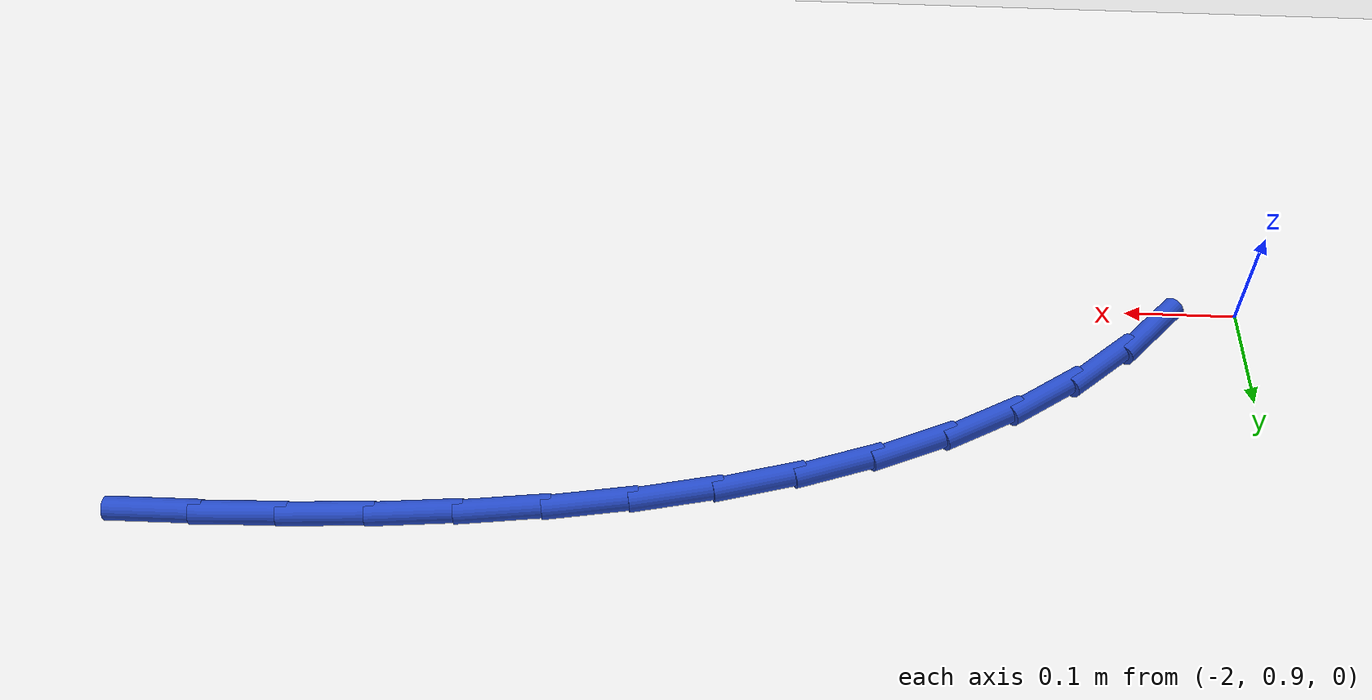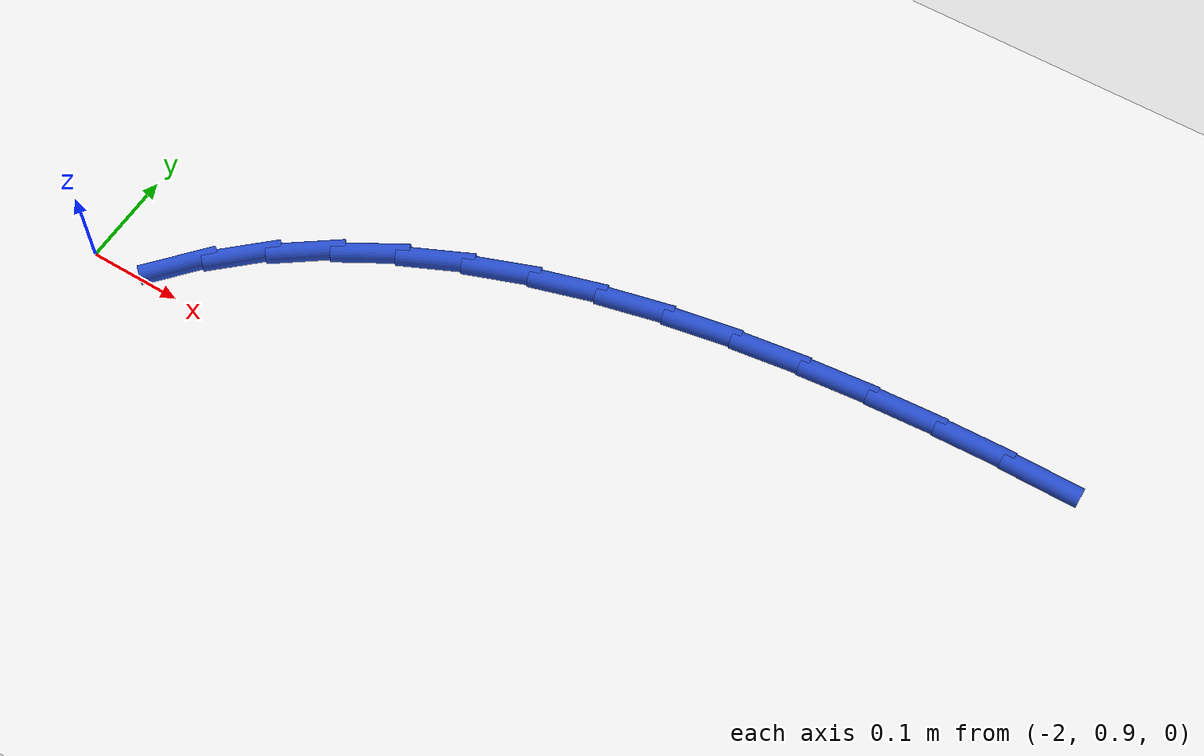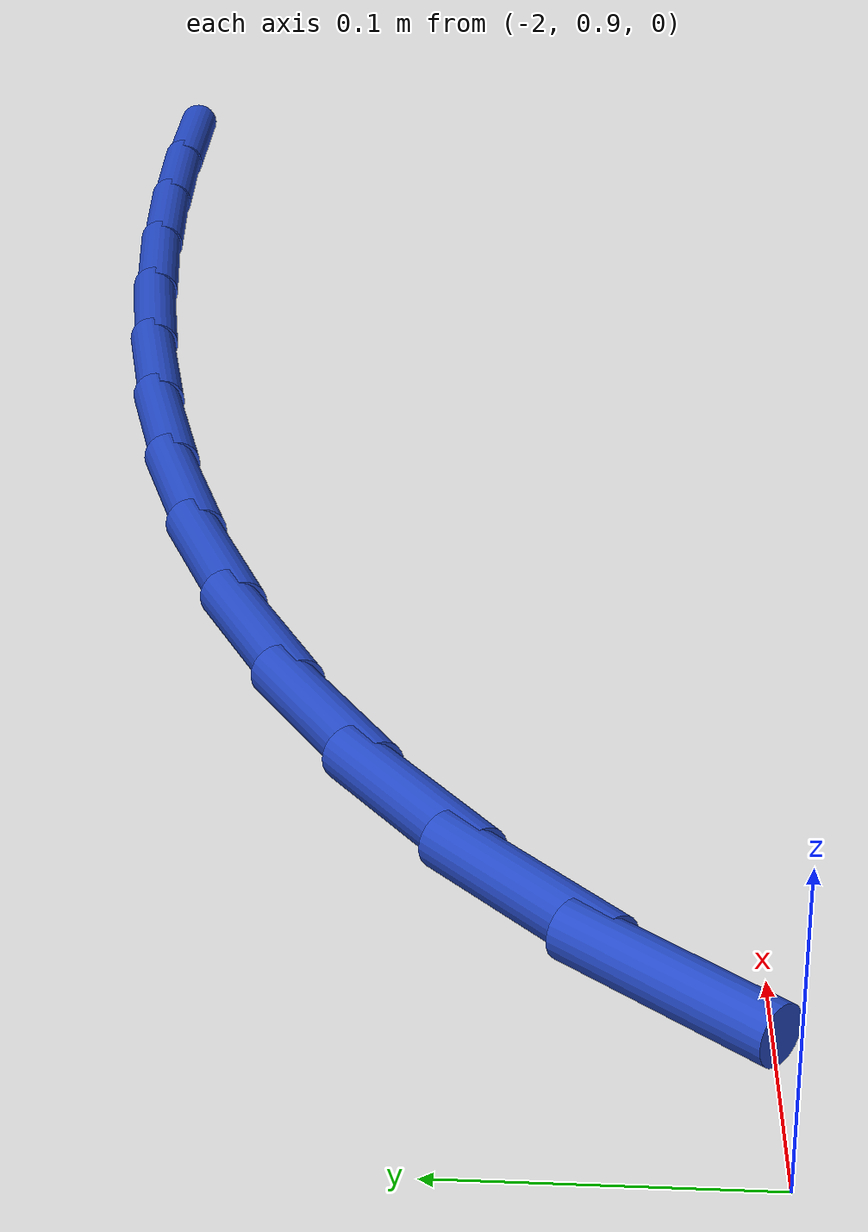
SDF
<sdf version="1.6">
 <world name="default">
  <model name="ground_plane">
   <static>1</static>
   <link name="link">
    <collision name="collision">
     <geometry><plane><normal>0 0 1</normal><size>100 100</size></plane></geometry>
     <surface><friction><ode><mu>100</mu><mu2>50</mu2></ode></friction></surface>
    </collision>
    <visual name="visual">
     <cast_shadows>0</cast_shadows>
     <geometry><plane><normal>0 0 1</normal><size>100 100</size></plane></geometry>
     <material>
      <script><uri>file://media/materials/scripts/gazebo.material</uri><name>Gazebo/WhiteGlow</name></script>
     </material>
    </visual>
   </link>
  </model>
  <model name="line">
   <link name="link_26">
    <pose>-1.0818054697793482 1.1676731496560506 0.01 0 1.57 0.009315763079756604</pose>
    <collision name="collision">
     <geometry><cylinder><radius>0.01</radius><length>0.08</length></cylinder></geometry>
    </collision>
    <visual name="visual">
     <material>
      <script><name>Gazebo/Blue</name><uri>file://media/materials/scripts/gazebo.material</uri></script>
     </material>
     <geometry><cylinder><radius>0.01</radius><length>0.08</length></cylinder></geometry>
    </visual>
   </link>
   <link name="link_27">
    <pose>-1.1517656130102303 1.167021398682846 0.01 0 1.57 0.04032283907594317</pose>
    <collision name="collision">
     <geometry><cylinder><radius>0.01</radius><length>0.08</length></cylinder></geometry>
    </collision>
    <visual name="visual">
     <material>
      <script><name>Gazebo/Blue</name><uri>file://media/materials/scripts/gazebo.material</uri></script>
     </material>
     <geometry><cylinder><radius>0.01</radius><length>0.08</length></cylinder></geometry>
    </visual>
   </link>
   <link name="link_28">
    <pose>-1.222502169804844 1.1641675529996913 0.01 0 1.57 0.06831232502614222</pose>
    <collision name="collision">
     <geometry><cylinder><radius>0.01</radius><length>0.08</length></cylinder></geometry>
    </collision>
    <visual name="visual">
     <material>
      <script><name>Gazebo/Blue</name><uri>file://media/materials/scripts/gazebo.material</uri></script>
     </material>
     <geometry><cylinder><radius>0.01</radius><length>0.08</length></cylinder></geometry>
    </visual>
   </link>
   <link name="link_29">
    <pose>-1.2936864774518142 1.159297209141389 0.01 0 1.57 0.10052441942195812</pose>
    <collision name="collision">
     <geometry><cylinder><radius>0.01</radius><length>0.08</length></cylinder></geometry>
    </collision>
    <visual name="visual">
     <material>
      <script><name>Gazebo/Blue</name><uri>file://media/materials/scripts/gazebo.material</uri></script>
     </material>
     <geometry><cylinder><radius>0.01</radius><length>0.08</length></cylinder></geometry>
    </visual>
   </link>
   <link name="link_30">
    <pose>-1.364812652204743 1.1521231102871643 0.01 0 1.57 0.13815422762933793</pose>
    <collision name="collision">
     <geometry><cylinder><radius>0.01</radius><length>0.08</length></cylinder></geometry>
    </collision>
    <visual name="visual">
     <material>
      <script><name>Gazebo/Blue</name><uri>file://media/materials/scripts/gazebo.material</uri></script>
     </material>
     <geometry><cylinder><radius>0.01</radius><length>0.08</length></cylinder></geometry>
    </visual>
   </link>
   <link name="link_31">
    <pose>-1.4353584777887505 1.1423144218835135 0.01 0 1.57 0.18191666838430395</pose>
    <collision name="collision">
     <geometry><cylinder><radius>0.01</radius><length>0.08</length></cylinder></geometry>
    </collision>
    <visual name="visual">
     <material>
      <script><name>Gazebo/Blue</name><uri>file://media/materials/scripts/gazebo.material</uri></script>
     </material>
     <geometry><cylinder><radius>0.01</radius><length>0.08</length></cylinder></geometry>
    </visual>
   </link>
   <link name="link_32">
    <pose>-1.5048017379289547 1.1295403093769327 0.01 0 1.57 0.23267003082374485</pose>
    <collision name="collision">
     <geometry><cylinder><radius>0.01</radius><length>0.08</length></cylinder></geometry>
    </collision>
    <visual name="visual">
     <material>
      <script><name>Gazebo/Blue</name><uri>file://media/materials/scripts/gazebo.material</uri></script>
     </material>
     <geometry><cylinder><radius>0.01</radius><length>0.08</length></cylinder></geometry>
    </visual>
   </link>
   <link name="link_33">
    <pose>-1.5726202163504759 1.1134699382139184 0.01 0 1.57 0.29140119633012423</pose>
    <collision name="collision">
     <geometry><cylinder><radius>0.01</radius><length>0.08</length></cylinder></geometry>
    </collision>
    <visual name="visual">
     <material>
      <script><name>Gazebo/Blue</name><uri>file://media/materials/scripts/gazebo.material</uri></script>
     </material>
     <geometry><cylinder><radius>0.01</radius><length>0.08</length></cylinder></geometry>
    </visual>
   </link>
   <link name="link_34">
    <pose>-1.6382916967784333 1.0937724738409669 0.01 0 1.57 0.35918170514050424</pose>
    <collision name="collision">
     <geometry><cylinder><radius>0.01</radius><length>0.08</length></cylinder></geometry>
    </collision>
    <visual name="visual">
     <material>
      <script><name>Gazebo/Blue</name><uri>file://media/materials/scripts/gazebo.material</uri></script>
     </material>
     <geometry><cylinder><radius>0.01</radius><length>0.08</length></cylinder></geometry>
    </visual>
   </link>
   <link name="link_35">
    <pose>-1.7012939629379455 1.0701170817045735 0.01 0 1.57 0.43707232827121406</pose>
    <collision name="collision">
     <geometry><cylinder><radius>0.01</radius><length>0.08</length></cylinder></geometry>
    </collision>
    <visual name="visual">
     <material>
      <script><name>Gazebo/Blue</name><uri>file://media/materials/scripts/gazebo.material</uri></script>
     </material>
     <geometry><cylinder><radius>0.01</radius><length>0.08</length></cylinder></geometry>
    </visual>
   </link>
   <link name="link_36">
    <pose>-1.7611047985541326 1.0421729272512357 0.01 0 1.57 0.5259489615827543</pose>
    <collision name="collision">
     <geometry><cylinder><radius>0.01</radius><length>0.08</length></cylinder></geometry>
    </collision>
    <visual name="visual">
     <material>
      <script><name>Gazebo/Blue</name><uri>file://media/materials/scripts/gazebo.material</uri></script>
     </material>
     <geometry><cylinder><radius>0.01</radius><length>0.08</length></cylinder></geometry>
    </visual>
   </link>
   <link name="link_37">
    <pose>-1.8172019873521128 1.0096091759274486 0.01 0 1.57 0.6262295264878529</pose>
    <collision name="collision">
     <geometry><cylinder><radius>0.01</radius><length>0.08</length></cylinder></geometry>
    </collision>
    <visual name="visual">
     <material>
      <script><name>Gazebo/Blue</name><uri>file://media/materials/scripts/gazebo.material</uri></script>
     </material>
     <geometry><cylinder><radius>0.01</radius><length>0.08</length></cylinder></geometry>
    </visual>
   </link>
   <link name="link_38">
    <pose>-1.869063313057007 0.9720949931797095 0.01 0 1.57 0.7375017224523037</pose>
    <collision name="collision">
     <geometry><cylinder><radius>0.01</radius><length>0.08</length></cylinder></geometry>
    </collision>
    <visual name="visual">
     <material>
      <script><name>Gazebo/Blue</name><uri>file://media/materials/scripts/gazebo.material</uri></script>
     </material>
     <geometry><cylinder><radius>0.01</radius><length>0.08</length></cylinder></geometry>
    </visual>
   </link>
   <link name="link_39">
    <pose>-1.9161671808689376 0.9293002447737334 0.01 0 1.57 0.853043769278351</pose>
    <collision name="collision">
     <geometry><cylinder><radius>0.01</radius><length>0.08</length></cylinder></geometry>
    </collision>
    <visual name="visual">
     <material>
      <script><name>Gazebo/Blue</name><uri>file://media/materials/scripts/gazebo.material</uri></script>
     </material>
     <geometry><cylinder><radius>0.01</radius><length>0.08</length></cylinder></geometry>
    </visual>
   </link>
  </model>
 </world>
</sdf>
